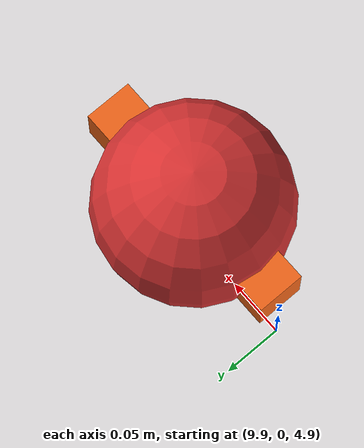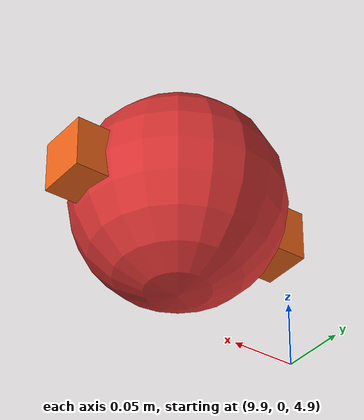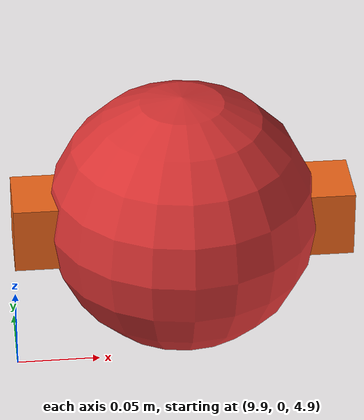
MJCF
<mujoco model="target">
  <worldbody>
    <body name="target" mocap="true" pos="10 0 5">
      <geom name="target_body" type="sphere" size="0.08" rgba="0.85 0.20 0.20 1"
            contype="0" conaffinity="0"/>
      <site name="target_marker" type="box" size="0.10 0.02 0.02" rgba="0.95 0.4 0.1 1"/>
    </body>
  </worldbody>
</mujoco>
